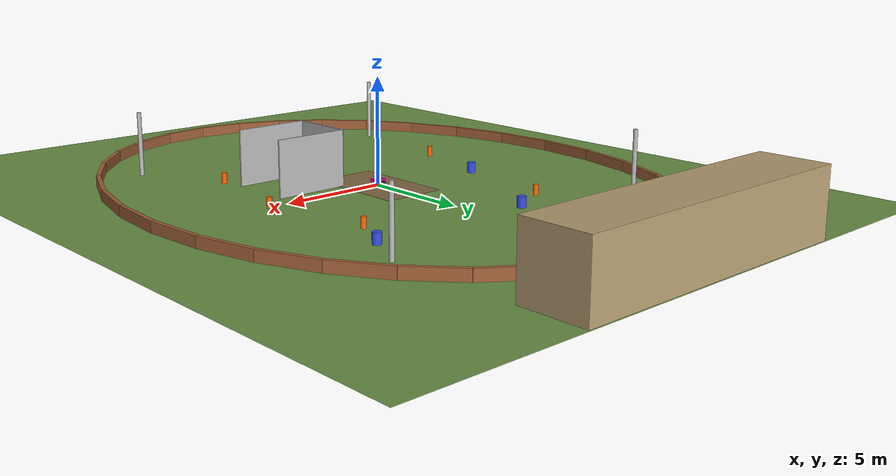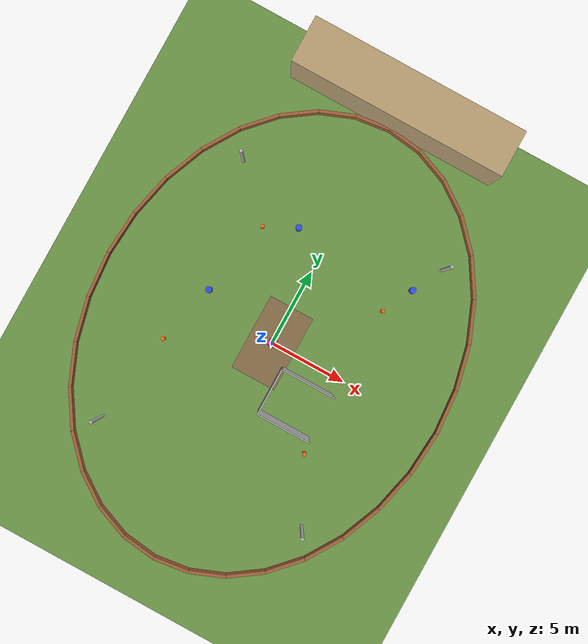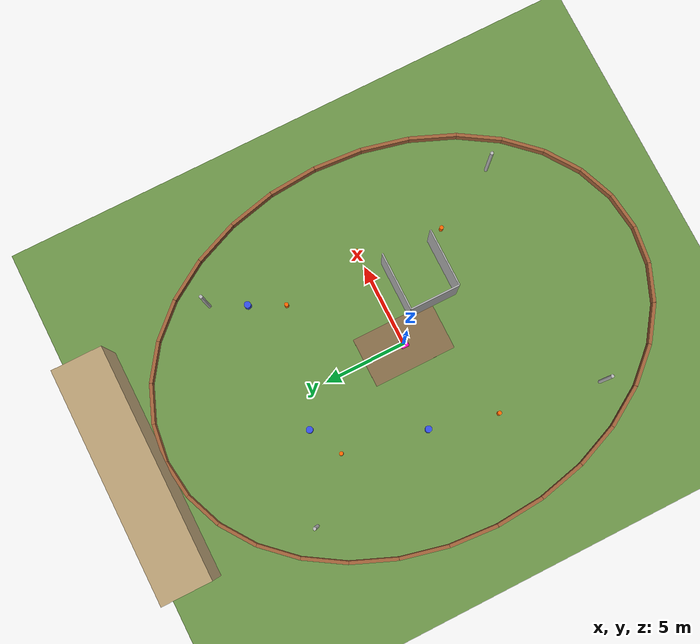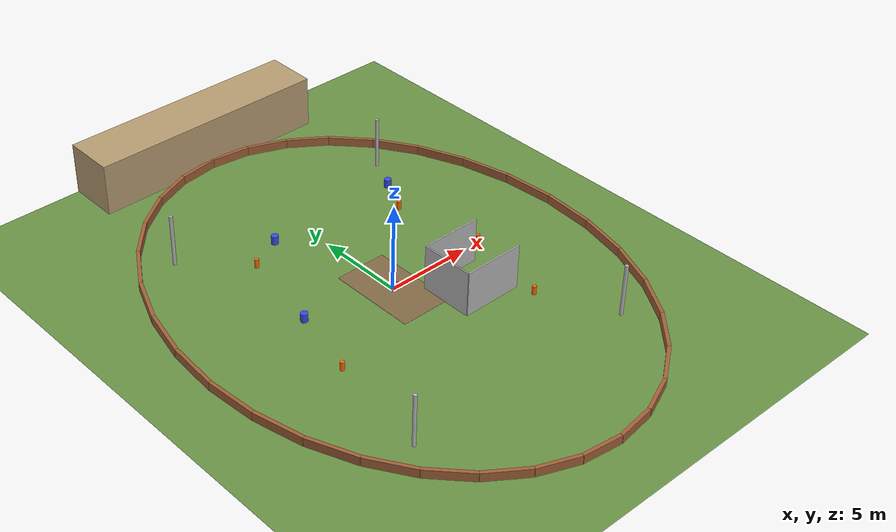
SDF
<?xml version="1.0"?>
<sdf version="1.8">
  <world name="james_oval">
    <gravity>0 0 -9.8</gravity>

    <gui fullscreen="0">
      <plugin filename="MinimalScene" name="3D View">
        <gz-gui>
          <title>3D View</title>
          <property type="bool" key="showTitleBar">false</property>
          <property type="string" key="state">docked</property>
        </gz-gui>
        <engine>ogre2</engine>
        <scene>scene</scene>
        <ambient_light>0.4 0.4 0.4</ambient_light>
        <background_color>0.8 0.8 0.8</background_color>
        <camera_pose>-2 -4 2.5 0 0.4 1.1</camera_pose>
        <camera_clip>
          <near>0.25</near>
          <far>500</far>
        </camera_clip>
      </plugin>
      <plugin filename="GzSceneManager" name="Scene Manager">
        <gz-gui>
          <property type="bool" key="showTitleBar">false</property>
          <property type="string" key="state">docked</property>
        </gz-gui>
      </plugin>
      <plugin filename="InteractiveViewControl" name="Interactive view control">
        <gz-gui>
          <property type="bool" key="showTitleBar">false</property>
          <property type="string" key="state">docked</property>
        </gz-gui>
      </plugin>
      <plugin filename="WorldControl" name="World control">
        <gz-gui>
          <title>World control</title>
          <property type="bool" key="showTitleBar">false</property>
          <property type="string" key="state">docked</property>
        </gz-gui>
        <play_pause>true</play_pause>
        <step>true</step>
        <start_paused>false</start_paused>
      </plugin>
    </gui>

    <physics name="1ms" type="ignored">
      <max_step_size>0.005</max_step_size>
      <real_time_factor>1.0</real_time_factor>
    </physics>

    <plugin filename="libgz-sim-physics-system" name="gz::sim::systems::Physics"/>
    <plugin filename="libgz-sim-user-commands-system" name="gz::sim::systems::UserCommands"/>
    <plugin filename="libgz-sim-scene-broadcaster-system" name="gz::sim::systems::SceneBroadcaster"/>
    <plugin filename="libgz-sim-sensors-system.so" name="gz::sim::systems::Sensors">
      <render_engine>ogre2</render_engine>
    </plugin>
    <plugin filename="libgz-sim-imu-system" name="gz::sim::systems::Imu"/>

    <light type="directional" name="sun">
      <cast_shadows>false</cast_shadows>
      <pose>0 0 20 0 0 0</pose>
      <diffuse>0.85 0.85 0.85 1</diffuse>
      <specular>0.2 0.2 0.2 1</specular>
      <attenuation>
        <range>1000</range>
        <constant>0.9</constant>
        <linear>0.01</linear>
        <quadratic>0.001</quadratic>
      </attenuation>
      <direction>-0.5 0.1 -0.9</direction>
    </light>

    <!-- ========== Ground: Green grass (Australian turf) ========== -->
    <model name="grass_field">
      <static>true</static>
      <link name="ground">
        <collision name="collision">
          <geometry><plane><normal>0 0 1</normal><size>30 36</size></plane></geometry>
        </collision>
        <visual name="visual">
          <geometry><plane><normal>0 0 1</normal><size>30 36</size></plane></geometry>
          <material>
            <ambient>0.25 0.38 0.16 1</ambient>
            <diffuse>0.42 0.58 0.28 1</diffuse>
            <specular>0.03 0.03 0.03 1</specular>
          </material>
        </visual>
      </link>
    </model>

    <!-- ========== Oval Boundary: 32-segment ellipse (23m x 30m) ========== -->
    <!-- Reddish-brown laterite track edge, matching James Oval walking path -->
    <model name="oval_boundary">
      <static>true</static>
      <link name="walls">
        <visual name="w00v">
          <pose>11.390 1.463 0.25 0 0 1.6462</pose>
          <geometry><box><size>2.935 0.2 0.5</size></box></geometry>
          <material><ambient>0.45 0.26 0.13 1</ambient><diffuse>0.63 0.38 0.22 1</diffuse></material>
        </visual>
        <collision name="w00c">
          <pose>11.390 1.463 0.25 0 0 1.6462</pose>
          <geometry><box><size>2.935 0.2 0.5</size></box></geometry>
        </collision>
        <visual name="w01v">
          <pose>10.952 4.333 0.25 0 0 1.7993</pose>
          <geometry><box><size>2.889 0.2 0.5</size></box></geometry>
          <material><ambient>0.45 0.26 0.13 1</ambient><diffuse>0.63 0.38 0.22 1</diffuse></material>
        </visual>
        <collision name="w01c">
          <pose>10.952 4.333 0.25 0 0 1.7993</pose>
          <geometry><box><size>2.889 0.2 0.5</size></box></geometry>
        </collision>
        <visual name="w02v">
          <pose>10.093 7.037 0.25 0 0 1.9597</pose>
          <geometry><box><size>2.803 0.2 0.5</size></box></geometry>
          <material><ambient>0.45 0.26 0.13 1</ambient><diffuse>0.63 0.38 0.22 1</diffuse></material>
        </visual>
        <collision name="w02c">
          <pose>10.093 7.037 0.25 0 0 1.9597</pose>
          <geometry><box><size>2.803 0.2 0.5</size></box></geometry>
        </collision>
        <visual name="w03v">
          <pose>8.847 9.470 0.25 0 0 2.1324</pose>
          <geometry><box><size>2.686 0.2 0.5</size></box></geometry>
          <material><ambient>0.45 0.26 0.13 1</ambient><diffuse>0.63 0.38 0.22 1</diffuse></material>
        </visual>
        <collision name="w03c">
          <pose>8.847 9.470 0.25 0 0 2.1324</pose>
          <geometry><box><size>2.686 0.2 0.5</size></box></geometry>
        </collision>
        <visual name="w04v">
          <pose>7.260 11.539 0.25 0 0 2.3222</pose>
          <geometry><box><size>2.553 0.2 0.5</size></box></geometry>
          <material><ambient>0.45 0.26 0.13 1</ambient><diffuse>0.63 0.38 0.22 1</diffuse></material>
        </visual>
        <collision name="w04c">
          <pose>7.260 11.539 0.25 0 0 2.3222</pose>
          <geometry><box><size>2.553 0.2 0.5</size></box></geometry>
        </collision>
        <visual name="w05v">
          <pose>5.395 13.165 0.25 0 0 2.5328</pose>
          <geometry><box><size>2.424 0.2 0.5</size></box></geometry>
          <material><ambient>0.45 0.26 0.13 1</ambient><diffuse>0.63 0.38 0.22 1</diffuse></material>
        </visual>
        <collision name="w05c">
          <pose>5.395 13.165 0.25 0 0 2.5328</pose>
          <geometry><box><size>2.424 0.2 0.5</size></box></geometry>
        </collision>
        <visual name="w06v">
          <pose>3.322 14.285 0.25 0 0 2.7648</pose>
          <geometry><box><size>2.320 0.2 0.5</size></box></geometry>
          <material><ambient>0.45 0.26 0.13 1</ambient><diffuse>0.63 0.38 0.22 1</diffuse></material>
        </visual>
        <collision name="w06c">
          <pose>3.322 14.285 0.25 0 0 2.7648</pose>
          <geometry><box><size>2.320 0.2 0.5</size></box></geometry>
        </collision>
        <visual name="w07v">
          <pose>1.122 14.856 0.25 0 0 3.0138</pose>
          <geometry><box><size>2.262 0.2 0.5</size></box></geometry>
          <material><ambient>0.45 0.26 0.13 1</ambient><diffuse>0.63 0.38 0.22 1</diffuse></material>
        </visual>
        <collision name="w07c">
          <pose>1.122 14.856 0.25 0 0 3.0138</pose>
          <geometry><box><size>2.262 0.2 0.5</size></box></geometry>
        </collision>
        <visual name="w08v">
          <pose>-1.122 14.856 0.25 0 0 -3.0138</pose>
          <geometry><box><size>2.262 0.2 0.5</size></box></geometry>
          <material><ambient>0.45 0.26 0.13 1</ambient><diffuse>0.63 0.38 0.22 1</diffuse></material>
        </visual>
        <collision name="w08c">
          <pose>-1.122 14.856 0.25 0 0 -3.0138</pose>
          <geometry><box><size>2.262 0.2 0.5</size></box></geometry>
        </collision>
        <visual name="w09v">
          <pose>-3.322 14.285 0.25 0 0 -2.7648</pose>
          <geometry><box><size>2.320 0.2 0.5</size></box></geometry>
          <material><ambient>0.45 0.26 0.13 1</ambient><diffuse>0.63 0.38 0.22 1</diffuse></material>
        </visual>
        <collision name="w09c">
          <pose>-3.322 14.285 0.25 0 0 -2.7648</pose>
          <geometry><box><size>2.320 0.2 0.5</size></box></geometry>
        </collision>
        <visual name="w10v">
          <pose>-5.395 13.165 0.25 0 0 -2.5328</pose>
          <geometry><box><size>2.424 0.2 0.5</size></box></geometry>
          <material><ambient>0.45 0.26 0.13 1</ambient><diffuse>0.63 0.38 0.22 1</diffuse></material>
        </visual>
        <collision name="w10c">
          <pose>-5.395 13.165 0.25 0 0 -2.5328</pose>
          <geometry><box><size>2.424 0.2 0.5</size></box></geometry>
        </collision>
        <visual name="w11v">
          <pose>-7.260 11.539 0.25 0 0 -2.3222</pose>
          <geometry><box><size>2.553 0.2 0.5</size></box></geometry>
          <material><ambient>0.45 0.26 0.13 1</ambient><diffuse>0.63 0.38 0.22 1</diffuse></material>
        </visual>
        <collision name="w11c">
          <pose>-7.260 11.539 0.25 0 0 -2.3222</pose>
          <geometry><box><size>2.553 0.2 0.5</size></box></geometry>
        </collision>
        <visual name="w12v">
          <pose>-8.847 9.470 0.25 0 0 -2.1324</pose>
          <geometry><box><size>2.686 0.2 0.5</size></box></geometry>
          <material><ambient>0.45 0.26 0.13 1</ambient><diffuse>0.63 0.38 0.22 1</diffuse></material>
        </visual>
        <collision name="w12c">
          <pose>-8.847 9.470 0.25 0 0 -2.1324</pose>
          <geometry><box><size>2.686 0.2 0.5</size></box></geometry>
        </collision>
        <visual name="w13v">
          <pose>-10.093 7.037 0.25 0 0 -1.9597</pose>
          <geometry><box><size>2.803 0.2 0.5</size></box></geometry>
          <material><ambient>0.45 0.26 0.13 1</ambient><diffuse>0.63 0.38 0.22 1</diffuse></material>
        </visual>
        <collision name="w13c">
          <pose>-10.093 7.037 0.25 0 0 -1.9597</pose>
          <geometry><box><size>2.803 0.2 0.5</size></box></geometry>
        </collision>
        <visual name="w14v">
          <pose>-10.952 4.333 0.25 0 0 -1.7993</pose>
          <geometry><box><size>2.889 0.2 0.5</size></box></geometry>
          <material><ambient>0.45 0.26 0.13 1</ambient><diffuse>0.63 0.38 0.22 1</diffuse></material>
        </visual>
        <collision name="w14c">
          <pose>-10.952 4.333 0.25 0 0 -1.7993</pose>
          <geometry><box><size>2.889 0.2 0.5</size></box></geometry>
        </collision>
        <visual name="w15v">
          <pose>-11.390 1.463 0.25 0 0 -1.6462</pose>
          <geometry><box><size>2.935 0.2 0.5</size></box></geometry>
          <material><ambient>0.45 0.26 0.13 1</ambient><diffuse>0.63 0.38 0.22 1</diffuse></material>
        </visual>
        <collision name="w15c">
          <pose>-11.390 1.463 0.25 0 0 -1.6462</pose>
          <geometry><box><size>2.935 0.2 0.5</size></box></geometry>
        </collision>
        <visual name="w16v">
          <pose>-11.390 -1.463 0.25 0 0 -1.4954</pose>
          <geometry><box><size>2.935 0.2 0.5</size></box></geometry>
          <material><ambient>0.45 0.26 0.13 1</ambient><diffuse>0.63 0.38 0.22 1</diffuse></material>
        </visual>
        <collision name="w16c">
          <pose>-11.390 -1.463 0.25 0 0 -1.4954</pose>
          <geometry><box><size>2.935 0.2 0.5</size></box></geometry>
        </collision>
        <visual name="w17v">
          <pose>-10.952 -4.333 0.25 0 0 -1.3423</pose>
          <geometry><box><size>2.889 0.2 0.5</size></box></geometry>
          <material><ambient>0.45 0.26 0.13 1</ambient><diffuse>0.63 0.38 0.22 1</diffuse></material>
        </visual>
        <collision name="w17c">
          <pose>-10.952 -4.333 0.25 0 0 -1.3423</pose>
          <geometry><box><size>2.889 0.2 0.5</size></box></geometry>
        </collision>
        <visual name="w18v">
          <pose>-10.093 -7.037 0.25 0 0 -1.1819</pose>
          <geometry><box><size>2.803 0.2 0.5</size></box></geometry>
          <material><ambient>0.45 0.26 0.13 1</ambient><diffuse>0.63 0.38 0.22 1</diffuse></material>
        </visual>
        <collision name="w18c">
          <pose>-10.093 -7.037 0.25 0 0 -1.1819</pose>
          <geometry><box><size>2.803 0.2 0.5</size></box></geometry>
        </collision>
        <visual name="w19v">
          <pose>-8.847 -9.470 0.25 0 0 -1.0092</pose>
          <geometry><box><size>2.686 0.2 0.5</size></box></geometry>
          <material><ambient>0.45 0.26 0.13 1</ambient><diffuse>0.63 0.38 0.22 1</diffuse></material>
        </visual>
        <collision name="w19c">
          <pose>-8.847 -9.470 0.25 0 0 -1.0092</pose>
          <geometry><box><size>2.686 0.2 0.5</size></box></geometry>
        </collision>
        <visual name="w20v">
          <pose>-7.260 -11.539 0.25 0 0 -0.8194</pose>
          <geometry><box><size>2.553 0.2 0.5</size></box></geometry>
          <material><ambient>0.45 0.26 0.13 1</ambient><diffuse>0.63 0.38 0.22 1</diffuse></material>
        </visual>
        <collision name="w20c">
          <pose>-7.260 -11.539 0.25 0 0 -0.8194</pose>
          <geometry><box><size>2.553 0.2 0.5</size></box></geometry>
        </collision>
        <visual name="w21v">
          <pose>-5.395 -13.165 0.25 0 0 -0.6088</pose>
          <geometry><box><size>2.424 0.2 0.5</size></box></geometry>
          <material><ambient>0.45 0.26 0.13 1</ambient><diffuse>0.63 0.38 0.22 1</diffuse></material>
        </visual>
        <collision name="w21c">
          <pose>-5.395 -13.165 0.25 0 0 -0.6088</pose>
          <geometry><box><size>2.424 0.2 0.5</size></box></geometry>
        </collision>
        <visual name="w22v">
          <pose>-3.322 -14.285 0.25 0 0 -0.3768</pose>
          <geometry><box><size>2.320 0.2 0.5</size></box></geometry>
          <material><ambient>0.45 0.26 0.13 1</ambient><diffuse>0.63 0.38 0.22 1</diffuse></material>
        </visual>
        <collision name="w22c">
          <pose>-3.322 -14.285 0.25 0 0 -0.3768</pose>
          <geometry><box><size>2.320 0.2 0.5</size></box></geometry>
        </collision>
        <visual name="w23v">
          <pose>-1.122 -14.856 0.25 0 0 -0.1278</pose>
          <geometry><box><size>2.262 0.2 0.5</size></box></geometry>
          <material><ambient>0.45 0.26 0.13 1</ambient><diffuse>0.63 0.38 0.22 1</diffuse></material>
        </visual>
        <collision name="w23c">
          <pose>-1.122 -14.856 0.25 0 0 -0.1278</pose>
          <geometry><box><size>2.262 0.2 0.5</size></box></geometry>
        </collision>
        <visual name="w24v">
          <pose>1.122 -14.856 0.25 0 0 0.1278</pose>
          <geometry><box><size>2.262 0.2 0.5</size></box></geometry>
          <material><ambient>0.45 0.26 0.13 1</ambient><diffuse>0.63 0.38 0.22 1</diffuse></material>
        </visual>
        <collision name="w24c">
          <pose>1.122 -14.856 0.25 0 0 0.1278</pose>
          <geometry><box><size>2.262 0.2 0.5</size></box></geometry>
        </collision>
        <visual name="w25v">
          <pose>3.322 -14.285 0.25 0 0 0.3768</pose>
          <geometry><box><size>2.320 0.2 0.5</size></box></geometry>
          <material><ambient>0.45 0.26 0.13 1</ambient><diffuse>0.63 0.38 0.22 1</diffuse></material>
        </visual>
        <collision name="w25c">
          <pose>3.322 -14.285 0.25 0 0 0.3768</pose>
          <geometry><box><size>2.320 0.2 0.5</size></box></geometry>
        </collision>
        <visual name="w26v">
          <pose>5.395 -13.165 0.25 0 0 0.6088</pose>
          <geometry><box><size>2.424 0.2 0.5</size></box></geometry>
          <material><ambient>0.45 0.26 0.13 1</ambient><diffuse>0.63 0.38 0.22 1</diffuse></material>
        </visual>
        <collision name="w26c">
          <pose>5.395 -13.165 0.25 0 0 0.6088</pose>
          <geometry><box><size>2.424 0.2 0.5</size></box></geometry>
        </collision>
        <visual name="w27v">
          <pose>7.260 -11.539 0.25 0 0 0.8194</pose>
          <geometry><box><size>2.553 0.2 0.5</size></box></geometry>
          <material><ambient>0.45 0.26 0.13 1</ambient><diffuse>0.63 0.38 0.22 1</diffuse></material>
        </visual>
        <collision name="w27c">
          <pose>7.260 -11.539 0.25 0 0 0.8194</pose>
          <geometry><box><size>2.553 0.2 0.5</size></box></geometry>
        </collision>
        <visual name="w28v">
          <pose>8.847 -9.470 0.25 0 0 1.0092</pose>
          <geometry><box><size>2.686 0.2 0.5</size></box></geometry>
          <material><ambient>0.45 0.26 0.13 1</ambient><diffuse>0.63 0.38 0.22 1</diffuse></material>
        </visual>
        <collision name="w28c">
          <pose>8.847 -9.470 0.25 0 0 1.0092</pose>
          <geometry><box><size>2.686 0.2 0.5</size></box></geometry>
        </collision>
        <visual name="w29v">
          <pose>10.093 -7.037 0.25 0 0 1.1819</pose>
          <geometry><box><size>2.803 0.2 0.5</size></box></geometry>
          <material><ambient>0.45 0.26 0.13 1</ambient><diffuse>0.63 0.38 0.22 1</diffuse></material>
        </visual>
        <collision name="w29c">
          <pose>10.093 -7.037 0.25 0 0 1.1819</pose>
          <geometry><box><size>2.803 0.2 0.5</size></box></geometry>
        </collision>
        <visual name="w30v">
          <pose>10.952 -4.333 0.25 0 0 1.3423</pose>
          <geometry><box><size>2.889 0.2 0.5</size></box></geometry>
          <material><ambient>0.45 0.26 0.13 1</ambient><diffuse>0.63 0.38 0.22 1</diffuse></material>
        </visual>
        <collision name="w30c">
          <pose>10.952 -4.333 0.25 0 0 1.3423</pose>
          <geometry><box><size>2.889 0.2 0.5</size></box></geometry>
        </collision>
        <visual name="w31v">
          <pose>11.390 -1.463 0.25 0 0 1.4954</pose>
          <geometry><box><size>2.935 0.2 0.5</size></box></geometry>
          <material><ambient>0.45 0.26 0.13 1</ambient><diffuse>0.63 0.38 0.22 1</diffuse></material>
        </visual>
        <collision name="w31c">
          <pose>11.390 -1.463 0.25 0 0 1.4954</pose>
          <geometry><box><size>2.935 0.2 0.5</size></box></geometry>
        </collision>
      </link>
    </model>

    <!-- ========== Cricket Pitch (central brown rectangle) ========== -->
    <model name="cricket_pitch">
      <static>true</static>
      <pose>0 0 0.005 0 0 0</pose>
      <link name="surface">
        <visual name="visual">
          <geometry><box><size>3.0 5.0 0.01</size></box></geometry>
          <material>
            <ambient>0.40 0.32 0.20 1</ambient>
            <diffuse>0.52 0.42 0.28 1</diffuse>
          </material>
        </visual>
      </link>
    </model>

    <!-- ========== North Building (UWA sandstone, outside oval) ========== -->
    <model name="north_building">
      <static>true</static>
      <pose>0 16.5 1.5 0 0 0</pose>
      <link name="wall">
        <visual name="visual">
          <geometry><box><size>14 3 3</size></box></geometry>
          <material>
            <ambient>0.60 0.50 0.35 1</ambient>
            <diffuse>0.72 0.62 0.45 1</diffuse>
          </material>
        </visual>
        <collision name="collision">
          <geometry><box><size>14 3 3</size></box></geometry>
        </collision>
      </link>
    </model>

    <!-- ========== Cricket Nets (south-east, matching photo) ========== -->
    <model name="cricket_net_left">
      <static>true</static>
      <pose>3 -4 1.3 0 0 0</pose>
      <link name="frame">
        <visual name="visual"><geometry><box><size>3.5 0.08 2.6</size></box></geometry></visual>
        <collision name="collision"><geometry><box><size>3.5 0.08 2.6</size></box></geometry></collision>
      </link>
    </model>
    <model name="cricket_net_right">
      <static>true</static>
      <pose>3 -1 1.3 0 0 0</pose>
      <link name="frame">
        <visual name="visual"><geometry><box><size>3.5 0.08 2.6</size></box></geometry></visual>
        <collision name="collision"><geometry><box><size>3.5 0.08 2.6</size></box></geometry></collision>
      </link>
    </model>
    <model name="cricket_net_back">
      <static>true</static>
      <pose>1.25 -2.5 1.3 0 0 1.5708</pose>
      <link name="frame">
        <visual name="visual"><geometry><box><size>3 0.08 2.6</size></box></geometry></visual>
        <collision name="collision"><geometry><box><size>3 0.08 2.6</size></box></geometry></collision>
      </link>
    </model>

    <!-- ========== Light Poles (4 corners inside oval) ========== -->
    <model name="light_pole_1">
      <static>true</static>
      <pose>-7 -9 1.5 0 0 0</pose>
      <link name="link">
        <visual name="visual"><geometry><cylinder><radius>0.1</radius><length>3.0</length></cylinder></geometry></visual>
        <collision name="collision"><geometry><cylinder><radius>0.1</radius><length>3.0</length></cylinder></geometry></collision>
      </link>
    </model>
    <model name="light_pole_2">
      <static>true</static>
      <pose>-7 9 1.5 0 0 0</pose>
      <link name="link">
        <visual name="visual"><geometry><cylinder><radius>0.1</radius><length>3.0</length></cylinder></geometry></visual>
        <collision name="collision"><geometry><cylinder><radius>0.1</radius><length>3.0</length></cylinder></geometry></collision>
      </link>
    </model>
    <model name="light_pole_3">
      <static>true</static>
      <pose>7 -9 1.5 0 0 0</pose>
      <link name="link">
        <visual name="visual"><geometry><cylinder><radius>0.1</radius><length>3.0</length></cylinder></geometry></visual>
        <collision name="collision"><geometry><cylinder><radius>0.1</radius><length>3.0</length></cylinder></geometry></collision>
      </link>
    </model>
    <model name="light_pole_4">
      <static>true</static>
      <pose>7 9 1.5 0 0 0</pose>
      <link name="link">
        <visual name="visual"><geometry><cylinder><radius>0.1</radius><length>3.0</length></cylinder></geometry></visual>
        <collision name="collision"><geometry><cylinder><radius>0.1</radius><length>3.0</length></cylinder></geometry></collision>
      </link>
    </model>

    <!-- ========== Orange Cones (5) ========== -->
    <model name="cone_1">
      <static>true</static>
      <pose>5 -5 0.25 0 0 0</pose>
      <link name="link">
        <visual name="visual">
          <geometry><cylinder><radius>0.12</radius><length>0.5</length></cylinder></geometry>
          <material><ambient>1.0 0.4 0.0 1</ambient><diffuse>1.0 0.4 0.0 1</diffuse></material>
        </visual>
        <collision name="collision"><geometry><cylinder><radius>0.12</radius><length>0.5</length></cylinder></geometry></collision>
      </link>
    </model>
    <model name="cone_2">
      <static>true</static>
      <pose>6 0 0.25 0 0 0</pose>
      <link name="link">
        <visual name="visual">
          <geometry><cylinder><radius>0.12</radius><length>0.5</length></cylinder></geometry>
          <material><ambient>1.0 0.4 0.0 1</ambient><diffuse>1.0 0.4 0.0 1</diffuse></material>
        </visual>
        <collision name="collision"><geometry><cylinder><radius>0.12</radius><length>0.5</length></cylinder></geometry></collision>
      </link>
    </model>
    <model name="cone_3">
      <static>true</static>
      <pose>5 5 0.25 0 0 0</pose>
      <link name="link">
        <visual name="visual">
          <geometry><cylinder><radius>0.12</radius><length>0.5</length></cylinder></geometry>
          <material><ambient>1.0 0.4 0.0 1</ambient><diffuse>1.0 0.4 0.0 1</diffuse></material>
        </visual>
        <collision name="collision"><geometry><cylinder><radius>0.12</radius><length>0.5</length></cylinder></geometry></collision>
      </link>
    </model>
    <model name="cone_4">
      <static>true</static>
      <pose>-4 6 0.25 0 0 0</pose>
      <link name="link">
        <visual name="visual">
          <geometry><cylinder><radius>0.12</radius><length>0.5</length></cylinder></geometry>
          <material><ambient>1.0 0.4 0.0 1</ambient><diffuse>1.0 0.4 0.0 1</diffuse></material>
        </visual>
        <collision name="collision"><geometry><cylinder><radius>0.12</radius><length>0.5</length></cylinder></geometry></collision>
      </link>
    </model>
    <model name="cone_5">
      <static>true</static>
      <pose>-6 -3 0.25 0 0 0</pose>
      <link name="link">
        <visual name="visual">
          <geometry><cylinder><radius>0.12</radius><length>0.5</length></cylinder></geometry>
          <material><ambient>1.0 0.4 0.0 1</ambient><diffuse>1.0 0.4 0.0 1</diffuse></material>
        </visual>
        <collision name="collision"><geometry><cylinder><radius>0.12</radius><length>0.5</length></cylinder></geometry></collision>
      </link>
    </model>

    <!-- ========== Blue Buckets (3) ========== -->
    <model name="bucket_1">
      <static>true</static>
      <pose>-2 7 0.25 0 0 0</pose>
      <link name="link">
        <visual name="visual">
          <geometry><cylinder><radius>0.2</radius><length>0.5</length></cylinder></geometry>
          <material><ambient>0.2 0.3 0.9 1</ambient><diffuse>0.2 0.3 0.9 1</diffuse></material>
        </visual>
        <collision name="collision"><geometry><cylinder><radius>0.2</radius><length>0.5</length></cylinder></geometry></collision>
      </link>
    </model>
    <model name="bucket_2">
      <static>true</static>
      <pose>6 7 0.25 0 0 0</pose>
      <link name="link">
        <visual name="visual">
          <geometry><cylinder><radius>0.2</radius><length>0.5</length></cylinder></geometry>
          <material><ambient>0.2 0.3 0.9 1</ambient><diffuse>0.2 0.3 0.9 1</diffuse></material>
        </visual>
        <collision name="collision"><geometry><cylinder><radius>0.2</radius><length>0.5</length></cylinder></geometry></collision>
      </link>
    </model>
    <model name="bucket_3">
      <static>true</static>
      <pose>-5 1 0.25 0 0 0</pose>
      <link name="link">
        <visual name="visual">
          <geometry><cylinder><radius>0.2</radius><length>0.5</length></cylinder></geometry>
          <material><ambient>0.2 0.3 0.9 1</ambient><diffuse>0.2 0.3 0.9 1</diffuse></material>
        </visual>
        <collision name="collision"><geometry><cylinder><radius>0.2</radius><length>0.5</length></cylinder></geometry></collision>
      </link>
    </model>

    <!-- ========== Robot ========== -->
    <include>
      <uri>model://pioneer</uri>
      <pose>0 0 0.02 0 0 0</pose>
      <name>pioneer</name>
    </include>
  </world>
</sdf>

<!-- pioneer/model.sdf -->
<sdf version="1.8">
  <model name="pioneer">
    <pose>0 0 0 0 0 0</pose>

    <link name="base_link">
      <pose>0 0 0 0 0 0</pose>
      <inertial>
        <pose>0 0 0.177 0 0 0</pose>
        <mass>20.0</mass>
        <inertia>
          <ixx>0.3338</ixx>
          <ixy>0.0</ixy>
          <ixz>0.0</ixz>
          <iyy>0.4783</iyy>
          <iyz>0.0</iyz>
          <izz>0.3338</izz>
        </inertia>
      </inertial>

      <collision name="chassis_collision">
        <pose>0 0 0.177 0 0 0</pose>
        <geometry>
          <box>
            <size>0.52 0.44 0.22</size>
          </box>
        </geometry>
      </collision>
      <visual name="chassis_visual">
        <pose>0 0 0.177 0 0 0</pose>
        <geometry>
          <box>
            <size>0.52 0.44 0.22</size>
          </box>
        </geometry>
        <material>
          <ambient>1 0 0.75 1</ambient>
          <diffuse>1 0 0.75 1</diffuse>
        </material>
      </visual>

      <collision name="top_plate_collision">
        <pose>0.043 0 0.254 0 0 0</pose>
        <geometry>
          <box>
            <size>0.20 0.20 0.05</size>
          </box>
        </geometry>
      </collision>
      <visual name="top_plate_visual">
        <pose>0.043 0 0.254 0 0 0</pose>
        <geometry>
          <box>
            <size>0.22 0.22 0.04</size>
          </box>
        </geometry>
        <material>
          <ambient>1 0.9 0.1 1</ambient>
          <diffuse>1 0.9 0.1 1</diffuse>
        </material>
      </visual>

      <visual name="mast_visual">
        <pose>0 0 0.55 0 0 0</pose>
        <geometry>
          <cylinder>
            <radius>0.02</radius>
            <length>0.6</length>
          </cylinder>
        </geometry>
        <material>
          <ambient>0 1 1 1</ambient>
          <diffuse>0 1 1 1</diffuse>
        </material>
      </visual>
      <visual name="flag_visual">
        <pose>0 0.06 0.82 0 0 0</pose>
        <geometry>
          <box>
            <size>0.02 0.12 0.08</size>
          </box>
        </geometry>
        <material>
          <ambient>1 0 1 1</ambient>
          <diffuse>1 0 1 1</diffuse>
        </material>
      </visual>

      <sensor name="imu_sensor" type="imu">
        <always_on>true</always_on>
        <update_rate>20</update_rate>
        <topic>imu</topic>
        <gz_frame_id>base_link</gz_frame_id>
        <imu>
          <angular_velocity>
            <x><noise type="gaussian"><mean>0</mean><stddev>0.001</stddev></noise></x>
            <y><noise type="gaussian"><mean>0</mean><stddev>0.001</stddev></noise></y>
            <z><noise type="gaussian"><mean>0</mean><stddev>0.001</stddev></noise></z>
          </angular_velocity>
          <linear_acceleration>
            <x><noise type="gaussian"><mean>0</mean><stddev>0.05</stddev></noise></x>
            <y><noise type="gaussian"><mean>0</mean><stddev>0.05</stddev></noise></y>
            <z><noise type="gaussian"><mean>0</mean><stddev>0.05</stddev></noise></z>
          </linear_acceleration>
        </imu>
      </sensor>
    </link>

    <link name="laser_frame">
      <pose>0.2 0 0.281 0 0 0</pose>
      <inertial>
        <mass>0.01</mass>
        <inertia>
          <ixx>1e-6</ixx>
          <ixy>0</ixy>
          <ixz>0</ixz>
          <iyy>1e-6</iyy>
          <iyz>0</iyz>
          <izz>1e-6</izz>
        </inertia>
      </inertial>
      <collision name="collision">
        <geometry>
          <box>
            <size>0.04 0.04 0.03</size>
          </box>
        </geometry>
      </collision>
      <visual name="visual">
        <geometry>
          <box>
            <size>0.05 0.05 0.035</size>
          </box>
        </geometry>
        <material>
          <ambient>0.75 0.75 0.75 1</ambient>
          <diffuse>0.75 0.75 0.75 1</diffuse>
        </material>
      </visual>
      <sensor name="front_lidar" type="gpu_lidar">
        <always_on>true</always_on>
        <update_rate>10</update_rate>
        <topic>scan</topic>
        <gz_frame_id>laser_frame</gz_frame_id>
        <lidar>
          <scan>
            <horizontal>
              <samples>810</samples>
              <resolution>1</resolution>
              <min_angle>-2.35619</min_angle>
              <max_angle>2.35619</max_angle>
            </horizontal>
          </scan>
          <range>
            <min>0.05</min>
            <max>20.0</max>
            <resolution>0.01</resolution>
          </range>
          <noise>
            <type>gaussian</type>
            <mean>0.0</mean>
            <stddev>0.02</stddev>
          </noise>
        </lidar>
      </sensor>
    </link>

    <joint name="laser_joint" type="fixed">
      <parent>base_link</parent>
      <child>laser_frame</child>
    </joint>

    <link name="cam_frame">
      <pose>0.24 0 0.261 0 0 0</pose>
      <inertial>
        <mass>0.05</mass>
        <inertia>
          <ixx>1e-4</ixx>
          <ixy>0</ixy>
          <ixz>0</ixz>
          <iyy>1e-4</iyy>
          <iyz>0</iyz>
          <izz>1e-4</izz>
        </inertia>
      </inertial>
      <collision name="collision">
        <geometry>
          <box>
            <size>0.06 0.05 0.04</size>
          </box>
        </geometry>
      </collision>
      <visual name="visual">
        <geometry>
          <box>
            <size>0.07 0.05 0.04</size>
          </box>
        </geometry>
        <material>
          <ambient>0.1 0.25 0.9 1</ambient>
          <diffuse>0.1 0.25 0.9 1</diffuse>
        </material>
      </visual>
    </link>

    <joint name="cam_joint" type="fixed">
      <parent>base_link</parent>
      <child>cam_frame</child>
    </joint>

    <link name="cam_optical_link">
      <pose>0.24 0 0.261 -1.5708 0 -1.5708</pose>
      <inertial>
        <mass>0.001</mass>
        <inertia>
          <ixx>1e-6</ixx>
          <ixy>0</ixy>
          <ixz>0</ixz>
          <iyy>1e-6</iyy>
          <iyz>0</iyz>
          <izz>1e-6</izz>
        </inertia>
      </inertial>
      <sensor name="front_camera" type="camera">
        <always_on>true</always_on>
        <update_rate>2</update_rate>
        <topic>camera/image</topic>
        <gz_frame_id>cam_optical_link</gz_frame_id>
        <camera>
          <camera_info_topic>camera/camera_info</camera_info_topic>
          <horizontal_fov>1.204277</horizontal_fov>
          <image>
            <width>160</width>
            <height>120</height>
            <format>R8G8B8</format>
          </image>
          <clip>
            <near>0.1</near>
            <far>12.0</far>
          </clip>
          <noise>
            <type>gaussian</type>
            <mean>0.0</mean>
            <stddev>0.0075</stddev>
          </noise>
        </camera>
      </sensor>
    </link>

    <joint name="cam_optical_joint" type="fixed">
      <parent>cam_frame</parent>
      <child>cam_optical_link</child>
    </joint>

    <link name="p3at_front_left_wheel">
      <pose>0.135 0.197 0.111 0 0 0</pose>
      <inertial>
        <mass>0.5</mass>
        <inertia>
          <ixx>0.012411765597</ixx>
          <ixy>0</ixy>
          <ixz>0</ixz>
          <iyy>0.015218160428</iyy>
          <iyz>0</iyz>
          <izz>0.011763977943</izz>
        </inertia>
      </inertial>
      <collision name="collision">
        <pose>0 0 0 -1.57079635 0 0</pose>
        <geometry>
          <cylinder>
            <radius>0.111</radius>
            <length>0.075</length>
          </cylinder>
        </geometry>
      </collision>
      <visual name="visual">
        <pose>0 0 0 -1.57079635 0 0</pose>
        <geometry>
          <cylinder>
            <radius>0.111</radius>
            <length>0.075</length>
          </cylinder>
        </geometry>
        <material>
          <ambient>0.117 0.117 0.117 1</ambient>
          <diffuse>0.117 0.117 0.117 1</diffuse>
        </material>
      </visual>
    </link>
    <joint name="p3at_front_left_wheel_joint" type="revolute">
      <parent>base_link</parent>
      <child>p3at_front_left_wheel</child>
      <axis>
        <xyz>0 1 0</xyz>
        <limit>
          <lower>-1e16</lower>
          <upper>1e16</upper>
          <effort>100</effort>
          <velocity>100</velocity>
        </limit>
        <dynamics>
          <damping>0.7</damping>
        </dynamics>
      </axis>
    </joint>

    <link name="p3at_front_right_wheel">
      <pose>0.135 -0.197 0.111 0 0 0</pose>
      <inertial>
        <mass>0.5</mass>
        <inertia>
          <ixx>0.012411765597</ixx>
          <ixy>0</ixy>
          <ixz>0</ixz>
          <iyy>0.015218160428</iyy>
          <iyz>0</iyz>
          <izz>0.011763977943</izz>
        </inertia>
      </inertial>
      <collision name="collision">
        <pose>0 0 0 -1.57079635 0 0</pose>
        <geometry>
          <cylinder>
            <radius>0.111</radius>
            <length>0.075</length>
          </cylinder>
        </geometry>
      </collision>
      <visual name="visual">
        <pose>0 0 0 -1.57079635 0 0</pose>
        <geometry>
          <cylinder>
            <radius>0.111</radius>
            <length>0.075</length>
          </cylinder>
        </geometry>
        <material>
          <ambient>0.117 0.117 0.117 1</ambient>
          <diffuse>0.117 0.117 0.117 1</diffuse>
        </material>
      </visual>
    </link>
    <joint name="p3at_front_right_wheel_joint" type="revolute">
      <parent>base_link</parent>
      <child>p3at_front_right_wheel</child>
      <axis>
        <xyz>0 1 0</xyz>
        <limit>
          <lower>-1e16</lower>
          <upper>1e16</upper>
          <effort>100</effort>
          <velocity>100</velocity>
        </limit>
        <dynamics>
          <damping>0.7</damping>
        </dynamics>
      </axis>
    </joint>

    <link name="p3at_back_left_wheel">
      <pose>-0.135 0.197 0.111 0 0 0</pose>
      <inertial>
        <mass>0.5</mass>
        <inertia>
          <ixx>0.012411765597</ixx>
          <ixy>0</ixy>
          <ixz>0</ixz>
          <iyy>0.015218160428</iyy>
          <iyz>0</iyz>
          <izz>0.011763977943</izz>
        </inertia>
      </inertial>
      <collision name="collision">
        <pose>0 0 0 -1.57079635 0 0</pose>
        <geometry>
          <cylinder>
            <radius>0.111</radius>
            <length>0.075</length>
          </cylinder>
        </geometry>
      </collision>
      <visual name="visual">
        <pose>0 0 0 -1.57079635 0 0</pose>
        <geometry>
          <cylinder>
            <radius>0.111</radius>
            <length>0.075</length>
          </cylinder>
        </geometry>
        <material>
          <ambient>0.117 0.117 0.117 1</ambient>
          <diffuse>0.117 0.117 0.117 1</diffuse>
        </material>
      </visual>
    </link>
    <joint name="p3at_back_left_wheel_joint" type="revolute">
      <parent>base_link</parent>
      <child>p3at_back_left_wheel</child>
      <axis>
        <xyz>0 1 0</xyz>
        <limit>
          <lower>-1e16</lower>
          <upper>1e16</upper>
          <effort>100</effort>
          <velocity>100</velocity>
        </limit>
        <dynamics>
          <damping>0.7</damping>
        </dynamics>
      </axis>
    </joint>

    <link name="p3at_back_right_wheel">
      <pose>-0.135 -0.197 0.111 0 0 0</pose>
      <inertial>
        <mass>0.5</mass>
        <inertia>
          <ixx>0.012411765597</ixx>
          <ixy>0</ixy>
          <ixz>0</ixz>
          <iyy>0.015218160428</iyy>
          <iyz>0</iyz>
          <izz>0.011763977943</izz>
        </inertia>
      </inertial>
      <collision name="collision">
        <pose>0 0 0 -1.57079635 0 0</pose>
        <geometry>
          <cylinder>
            <radius>0.111</radius>
            <length>0.075</length>
          </cylinder>
        </geometry>
      </collision>
      <visual name="visual">
        <pose>0 0 0 -1.57079635 0 0</pose>
        <geometry>
          <cylinder>
            <radius>0.111</radius>
            <length>0.075</length>
          </cylinder>
        </geometry>
        <material>
          <ambient>0.117 0.117 0.117 1</ambient>
          <diffuse>0.117 0.117 0.117 1</diffuse>
        </material>
      </visual>
    </link>
    <joint name="p3at_back_right_wheel_joint" type="revolute">
      <parent>base_link</parent>
      <child>p3at_back_right_wheel</child>
      <axis>
        <xyz>0 1 0</xyz>
        <limit>
          <lower>-1e16</lower>
          <upper>1e16</upper>
          <effort>100</effort>
          <velocity>100</velocity>
        </limit>
        <dynamics>
          <damping>0.7</damping>
        </dynamics>
      </axis>
    </joint>

    <plugin filename="gz-sim-joint-state-publisher-system" name="gz::sim::systems::JointStatePublisher">
      <topic>joint_states</topic>
    </plugin>
    <plugin filename="gz-sim-diff-drive-system" name="gz::sim::systems::DiffDrive">
      <left_joint>p3at_front_left_wheel_joint</left_joint>
      <left_joint>p3at_back_left_wheel_joint</left_joint>
      <right_joint>p3at_front_right_wheel_joint</right_joint>
      <right_joint>p3at_back_right_wheel_joint</right_joint>
      <wheel_separation>0.394</wheel_separation>
      <wheel_radius>0.111</wheel_radius>
      <odom_publish_frequency>20.0</odom_publish_frequency>
      <topic>cmd_vel</topic>
      <odom_topic>odom</odom_topic>
      <frame_id>odom</frame_id>
      <child_frame_id>base_link</child_frame_id>
      <publish_odom>true</publish_odom>
      <publish_odom_tf>false</publish_odom_tf>
    </plugin>
  </model>
</sdf>
